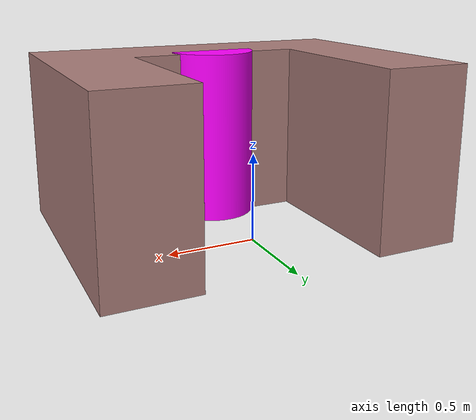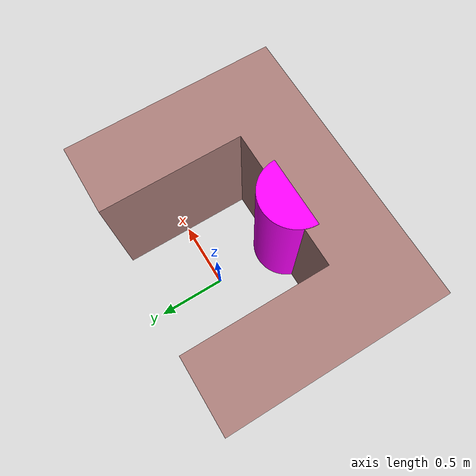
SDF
<?xml version="1.0"?>
<sdf version="1.6">
    <model name="rrt_planner_test">
    <static>true</static>

    <link name="link_body">
        <pose>0 0 0 0 0 0</pose>
        <collision name="collision_body">
        <pose>0 0 0 0 0 0</pose>
        <laser_retro>0.5</laser_retro>
        <geometry>
            <mesh>
            <uri>model://rrt_planner_test/meshes/walls.dae</uri>
            <scale>100 100 100</scale>
            </mesh>
        </geometry>
        </collision>
        <visual name="visual_body">
        <pose>0 0 0 0 0 0</pose>
        <geometry>
            <mesh>
            <uri>model://rrt_planner_test/meshes/walls.dae</uri>
            <scale>100 100 100</scale>
            </mesh>
        </geometry>
        </visual>
    </link>
    <link name="link_landmarks">
        <pose>0 0 0 0 0 0</pose>
        <collision name="collision_landmarks">
        <pose>0 0 0 0 0 0</pose>
        <laser_retro>1</laser_retro>
        <geometry>
            <mesh>
            <uri>model://rrt_planner_test/meshes/landmark.dae</uri>
            <scale>100 100 100</scale>
            </mesh>
        </geometry>
        </collision>
        <visual name="visual_landmarks">
        <pose>0 0 0 0 0 0</pose>
        <geometry>
            <mesh>
            <uri>model://rrt_planner_test/meshes/landmark.dae</uri>
            <scale>100 100 100</scale>
            </mesh>
        </geometry>
        </visual>
    </link>
    </model>
</sdf>
